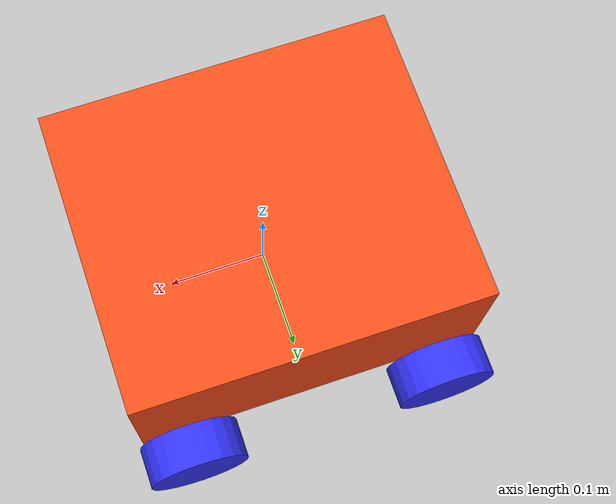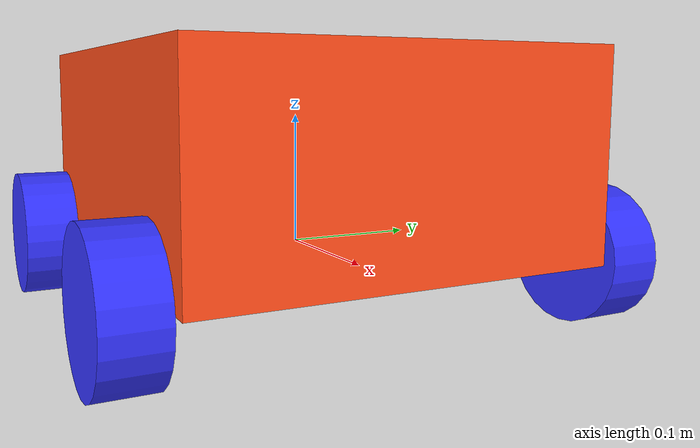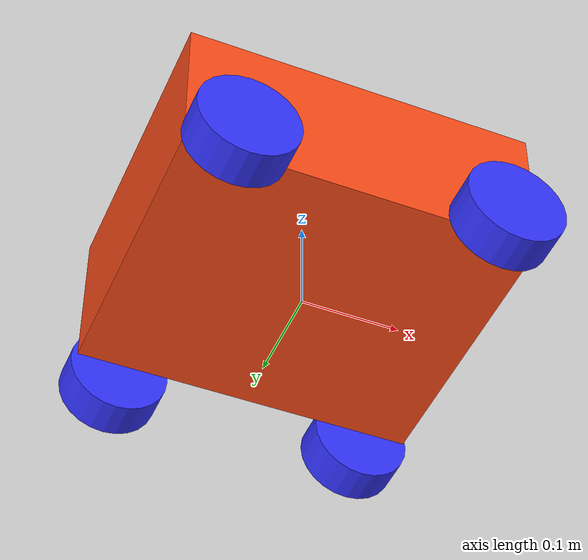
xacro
<?xml version="1.0"?>
<robot xmlns:xacro="http://www.ros.org/wiki/xacro">

    <xacro:include filename="inertial_macro.xacro" />

    <!-- MATERIALS -->
    <material name="white"><color rgba="1 1 1 1"/></material>
    <material name="orange"><color rgba="1 0.3 0.1 1"/></material>
    <material name="blue"><color rgba="0.2 0.2 1 1"/></material>
    <material name="black"><color rgba="0 0 0 1"/></material>

    <!-- BASE LINK -->
    <link name="base_link" />

    <!-- BASE_FOOTPRINT LINK -->

    <joint name="base_footprint_joint" type="fixed">
        <parent link="base_link"/>
        <child link="base_footprint"/>
        <origin xyz="0 0 0" rpy="0 0 0"/>
    </joint>

    <link name="base_footprint">
    </link>

    <!-- CHASSIS JOINT -->
    <joint name="chassis_joint" type="fixed">
        <parent link="base_link"/>
        <child link="chassis"/>
        <origin xyz="0 0 0"/>
    </joint>

    <!-- CHASSIS LINK -->
    <link name="chassis">
        <visual>
            <origin xyz="0 0 0.075"/>
            <geometry>
                <box size="0.35 0.3 0.15"/>
            </geometry>
            <material name="orange"/>
        </visual>
        <collision>
            <origin xyz="0 0 0.075"/>
            <geometry>
                <box size="0.35 0.3 0.15"/>
            </geometry>
        </collision>
        <xacro:inertial_box mass="0.5" x="0.35" y="0.3" z="0.15">
            <origin xyz="0 0 0.075" rpy="0 0 0"/>
        </xacro:inertial_box>
    </link>

    <gazebo reference="chassis">
        <material>Gazebo/Orange</material>
    </gazebo>

    <!--       REAR LEFT WHEEL    -->
    <joint name="rear_left_wheel_joint" type="continuous">
        <parent link="base_link"/>
        <child link="rear_left_wheel"/>
        <origin xyz="-0.13 0.175 0" rpy="-${pi/2} 0 0"/>
        <axis xyz="0 0 1"/>
    </joint>

    <link name="rear_left_wheel">
        <visual>
            <geometry>
                <cylinder radius="0.05" length="0.04"/>
            </geometry>
            <material name="blue"/>
        </visual>
        <collision>
            <geometry>
                <cylinder radius="0.05" length="0.04"/>
            </geometry>
        </collision>
        <xacro:inertial_cylinder mass="0.1" length="0.05" radius="0.05">
            <origin xyz="0 0 0" rpy="0 0 0"/>
        </xacro:inertial_cylinder>
    </link>

    <gazebo reference="rear_left_wheel">
        <material>Gazebo/Blue</material>
    </gazebo>

    <!--       REAR RIGHT WHEEL   -->
    <joint name="rear_right_wheel_joint" type="continuous">
        <parent link="base_link"/>
        <child link="rear_right_wheel"/>
        <origin xyz="-0.13 -0.175 0" rpy="${pi/2} 0 0"/>
        <axis xyz="0 0 -1"/>
    </joint>

    <link name="rear_right_wheel">
        <visual>
            <geometry>
                <cylinder radius="0.05" length="0.04"/>
            </geometry>
            <material name="blue"/>
        </visual>
        <collision>
            <geometry>
                <cylinder radius="0.05" length="0.04"/>
            </geometry>
        </collision>
        <xacro:inertial_cylinder mass="0.1" length="0.05" radius="0.05">
            <origin xyz="0 0 0" rpy="0 0 0"/>
        </xacro:inertial_cylinder>
    </link>

    <gazebo reference="rear_right_wheel">
        <material>Gazebo/Blue</material>
    </gazebo>

    <!--      FRONT LEFT WHEEL    -->
    <joint name="front_left_wheel_joint" type="continuous">
        <parent link="base_link"/>
        <child link="front_left_wheel"/>
        <origin xyz="0.13 0.175 0" rpy="-${pi/2} 0 0"/>
        <axis xyz="0 0 1"/>
    </joint>

    <link name="front_left_wheel">
        <visual>
            <geometry>
                <cylinder radius="0.05" length="0.04"/>
            </geometry>
            <material name="blue"/>
        </visual>
        <collision>
            <geometry>
                <cylinder radius="0.05" length="0.04"/>
            </geometry>
        </collision>
        <xacro:inertial_cylinder mass="0.1" length="0.05" radius="0.05">
            <origin xyz="0 0 0" rpy="0 0 0"/>
        </xacro:inertial_cylinder>
    </link>

    <gazebo reference="front_left_wheel">
        <material>Gazebo/Blue</material>
    </gazebo>

    <!--     FRONT RIGHT WHEEL    -->
    <joint name="front_right_wheel_joint" type="continuous">
        <parent link="base_link"/>
        <child link="front_right_wheel"/>
        <origin xyz="0.13 -0.175 0" rpy="${pi/2} 0 0"/>
        <axis xyz="0 0 -1"/>
    </joint>

    <link name="front_right_wheel">
        <visual>
            <geometry>
                <cylinder radius="0.05" length="0.04"/>
            </geometry>
            <material name="blue"/>
        </visual>
        <collision>
            <geometry>
                <cylinder radius="0.05" length="0.04"/>
            </geometry>
        </collision>
        <xacro:inertial_cylinder mass="0.1" length="0.05" radius="0.05">
            <origin xyz="0 0 0" rpy="0 0 0"/>
        </xacro:inertial_cylinder>
    </link>

    <gazebo reference="front_right_wheel">
        <material>Gazebo/Blue</material>
    </gazebo>

</robot>
